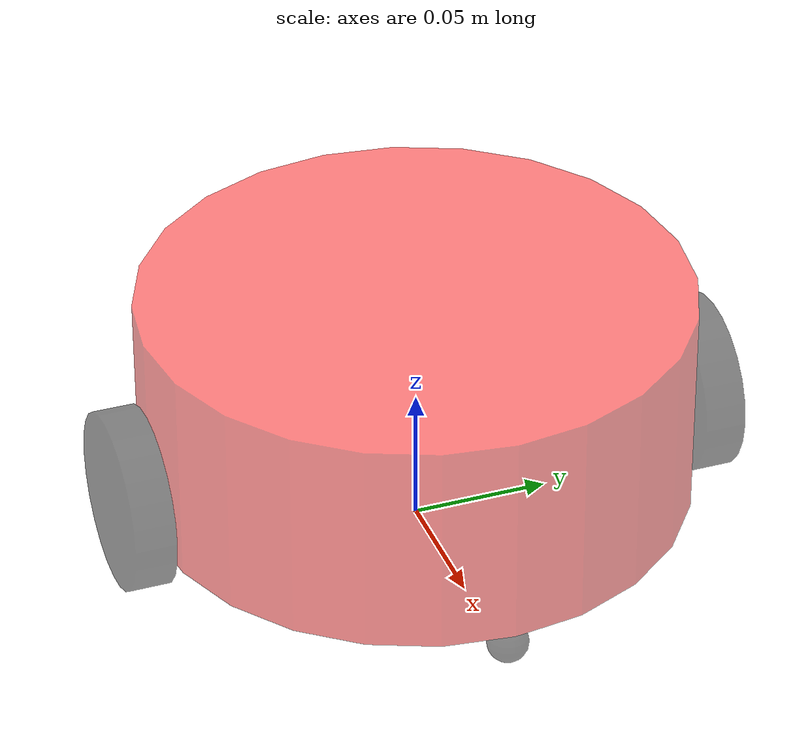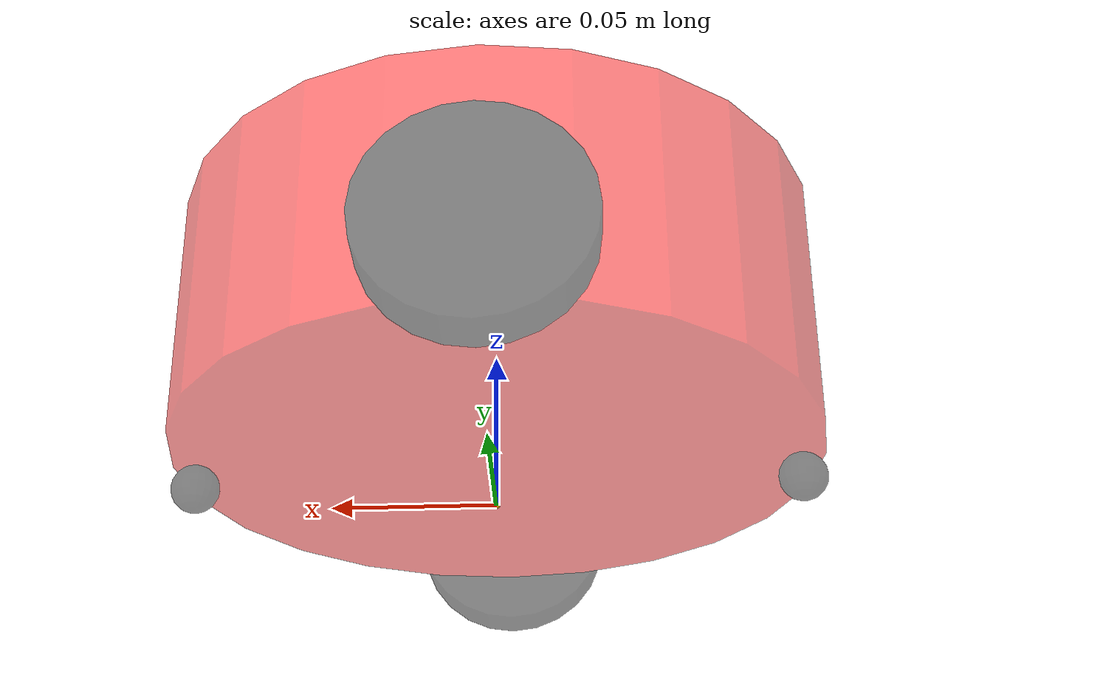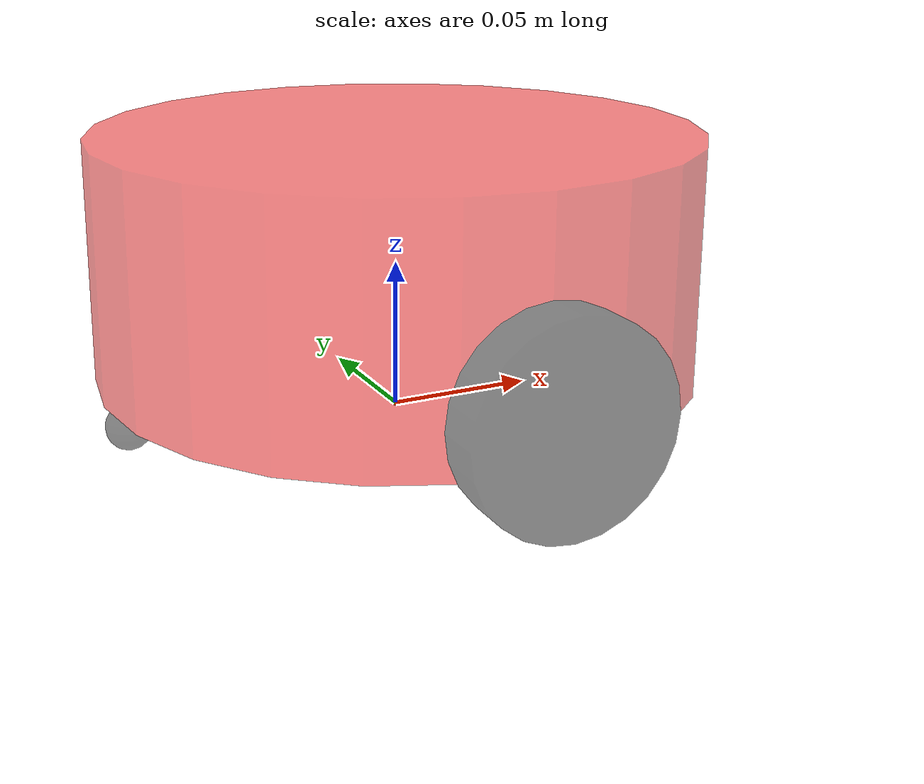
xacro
<robot xmlns:xacro="http://www.ros.org/wiki/xacro" name="my_car">
    <xacro:property name="footprint_radius" value="0.001"/>
    <xacro:property name="baselink_radius" value="0.1"/>
    <xacro:property name="baselink_length" value="0.08"/>
    <xacro:property name="baselink_mass" value="2"/>
    <xacro:property name="intervel" value="0.015"/>
    <xacro:property name="baselink_joint_z" value="${baselink_length / 2 + intervel}"/>
    <xacro:property name="PI" value="3.1415927"/>
    <xacro:property name="wheel_radius" value="0.0325"/>
    <xacro:property name="wheel_length" value="0.015"/>
    <xacro:property name="wheel_mass" value="0.5"/>
    <xacro:property name="wheel_joint_y" value="${baselink_radius + wheel_length / 2}"/>
    <xacro:property name="wheel_joint_z" value="${-(baselink_length / 2 + intervel - wheel_radius)}"/>
    <xacro:property name="small_wheel_radius" value="0.0075"/>
    <xacro:property name="small_wheel_mass" value="0.1"/>
    <xacro:property name="small_wheel_wheel_joint_x" value="${baselink_radius - small_wheel_radius}"/>
    <xacro:property name="small_wheel_wheel_joint_z" value="${-(baselink_length / 2 + intervel - small_wheel_radius)}"/>

    <!-- footprint -->
    <link name="base_footprint">
        <visual>
            <geometry>
                <sphere radius="${footprint_radius}"/>
            </geometry>
        </visual>
    </link>

    <!-- 底盘 -->
    <link name="base_link">
        <visual>
            <origin xyz="0.0 0.0 0.0" rpy="0.0 0.0 0.0"/>
            <geometry>
                <cylinder radius="${baselink_radius}" length="${baselink_length}"/>
            </geometry>
            <material name="baselink_colour">
                <color rgba="1.0 0.0 0.0 0.5"/>
            </material>
        </visual>

        <collision>
            <origin xyz="0.0 0.0 0.0" rpy="0.0 0.0 0.0"/>
            <geometry>
                <cylinder radius="${baselink_radius}" length="${baselink_length}"/>
            </geometry>
        </collision>

        <!-- 惯性矩宏 -->
        <xacro:cylinder_inertial_matrix m="${baselink_mass}" r="${baselink_radius}" h="${baselink_length}"/>
    </link>

    <gazebo reference="base_link">
        <material>Gazebo/Yellow</material>
    </gazebo>

    <joint name="link2footprint" type="fixed">
        <origin xyz="0.0 0.0 ${baselink_joint_z}" rpy="0.0 0.0 0.0"/>
        <parent link="base_footprint"/>
        <child link="base_link"/>
    </joint>

    <!-- 驱动轮 flag左轮为1右轮为-1-->
    <xacro:macro name="wheel_func" params="wheel_name flag">
        <link name="${wheel_name}_wheel">
            <visual>
                <origin xyz="0.0 0.0 0.0" rpy="${PI / 2} 0.0 0.0"/>
                <geometry>
                    <cylinder radius="${wheel_radius}" length="${wheel_length}"/>
                </geometry>
                <material name="wheel_colour">
                    <color rgba="0.0 0.0 0.0 0.5"/>
                </material>
            </visual>

            <collision>
                <origin xyz="0.0 0.0 0.0" rpy="${PI / 2} 0.0 0.0"/>
                <geometry>
                    <cylinder radius="${wheel_radius}" length="${wheel_length}"/>
                </geometry>
            </collision>

        <!-- 惯性矩宏 -->
            <xacro:cylinder_inertial_matrix m="${wheel_mass}" r="${wheel_radius}" h="${wheel_length}"/>
        </link>

        <gazebo reference="${wheel_name}_wheel">
            <material>Gazebo/Black</material>
        </gazebo>

        <joint name="${wheel_name}2baselink" type="continuous">
            <origin xyz="0.0 ${flag * wheel_joint_y} ${wheel_joint_z} " rpy="0.0 0.0 0.0"/>
            <parent link="base_link"/>
            <child link="${wheel_name}_wheel"/>
            <axis xyz="0.0 1 0.0"/>
        </joint>
    </xacro:macro>

    <!-- 万向轮 -->
    <xacro:macro name="small_wheel_func" params="small_wheel_name flag">
        <link name="${small_wheel_name}_wheel">
            <visual>
                <origin xyz="0.0 0.0 0.0" rpy="0.0 0.0 0.0"/>
                <geometry>
                    <sphere radius="${small_wheel_radius}"/>
                </geometry>
                <material name="wheel_colour">
                    <color rgba="0.0 0.0 0.0 0.5"/>
                </material>
            </visual>

            <collision>
                <origin xyz="0.0 0.0 0.0" rpy="0.0 0.0 0.0"/>
                <geometry>
                    <sphere radius="${small_wheel_radius}"/>
                </geometry>
            </collision>

        <!-- 惯性矩宏 -->
            <xacro:sphere_inertial_matrix m="${small_wheel_mass}" r="${small_wheel_radius}"/>
        </link>

        <gazebo reference="${small_wheel_name}_wheel">
            <material>Gazebo/Black</material>
        </gazebo>

        <joint name="${small_wheel_name}2baselink" type="continuous">
            <origin xyz="${flag * small_wheel_wheel_joint_x} 0.0 ${small_wheel_wheel_joint_z}" rpy="0.0 0.0 0.0"/>
            <parent link="base_link"/>
            <child link="${small_wheel_name}_wheel"/>
            <axis xyz="0 1 0"/>
        </joint>
    </xacro:macro>

    <xacro:wheel_func wheel_name="left" flag="1"/>
    <xacro:wheel_func wheel_name="right" flag="-1"/>

    <xacro:small_wheel_func small_wheel_name="front" flag="1"/>
    <xacro:small_wheel_func small_wheel_name="back" flag="-1"/>

</robot>
